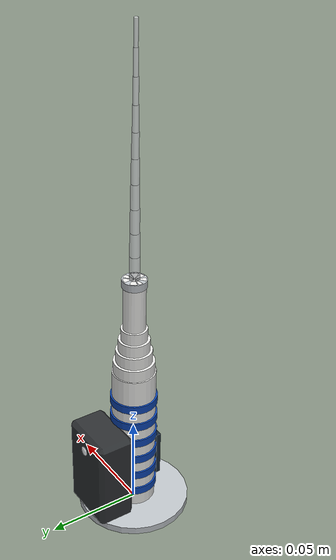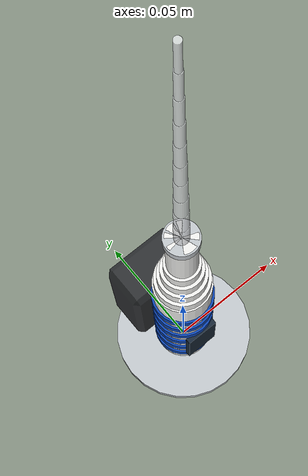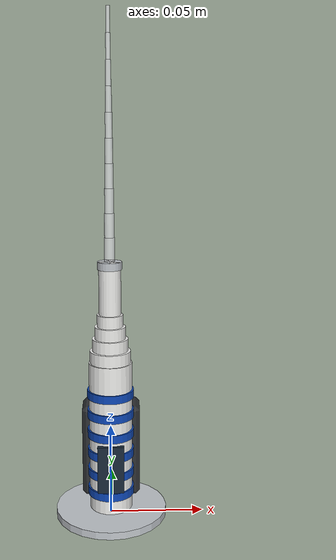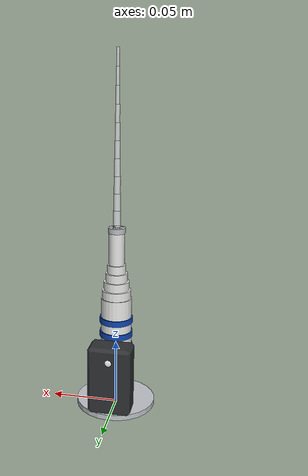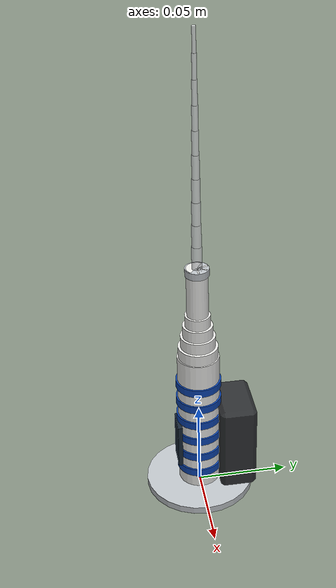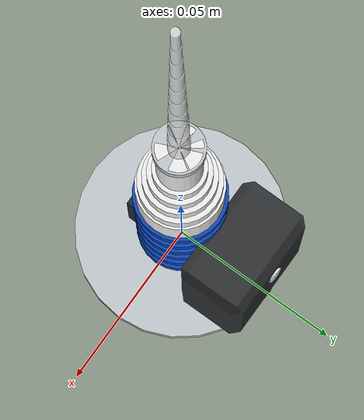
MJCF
<?xml version="1.0" encoding="utf-8"?>
<!-- Generated by scripts/generate_pipette.py; do not edit by hand. -->
<mujoco model="pipette">
<asset>
<material name="panel" rgba="0.93 0.93 0.91 1" specular="0.35" shininess="0.5"/>
<material name="panel_joint" rgba="0.74 0.75 0.75 1"/>
<material name="floor" rgba="0.80 0.81 0.81 1" specular="0.3" shininess="0.6" reflectance="0.12"/>
<material name="ceiling" rgba="0.95 0.95 0.94 1" specular="0.05" emission="0.45"/>
<material name="led" rgba="0.98 0.99 1.0 1" emission="1"/>
<material name="grille" rgba="0.55 0.57 0.58 1"/>
<material name="worktop" rgba="0.95 0.95 0.94 1" specular="0.8" shininess="0.9" reflectance="0.3"/>
<material name="white" rgba="0.94 0.94 0.93 1" specular="0.3" shininess="0.4"/>
<material name="white_matte" rgba="0.92 0.92 0.91 1" specular="0.1"/>
<material name="shelf" rgba="0.95 0.95 0.95 1" specular="0.4" shininess="0.5"/>
<material name="seam" rgba="0.80 0.81 0.81 1"/>
<material name="amber" rgba="0.55 0.24 0.04 0.82" specular="0.9" shininess="0.95"/>
<material name="sample_hdpe" rgba="0.92 0.92 0.91 1" specular="0.25" shininess="0.4"/>
<material name="sample_cap" rgba="0.93 0.93 0.91 1" specular="0.3" shininess="0.5"/>
<material name="glass" rgba="0.80 0.90 0.95 0.15" specular="0.9" shininess="0.95" reflectance="0.1"/>
<material name="glass_clear" rgba="0.88 0.94 0.97 0.30" specular="0.9" shininess="0.95"/>
<material name="frosted" rgba="0.96 0.97 0.98 0.75"/>
<material name="aluminium" rgba="0.76 0.78 0.80 1" specular="0.7" shininess="0.7"/>
<material name="steel" rgba="0.72 0.73 0.74 1" specular="0.8" shininess="0.6"/>
<material name="black" rgba="0.05 0.05 0.06 1" specular="0.9" shininess="0.9"/>
<material name="dark" rgba="0.18 0.19 0.20 1"/>
<material name="grey_device" rgba="0.80 0.81 0.80 1" specular="0.3"/>
<material name="screen" rgba="0.10 0.16 0.22 1" emission="0.25"/>
<material name="orange" rgba="0.93 0.40 0.10 1"/>
<material name="blue_hdpe" rgba="0.05 0.28 0.72 1" specular="0.15"/>
<material name="blue_motor" rgba="0.10 0.30 0.70 1" specular="0.5"/>
<material name="stripe_blue" rgba="0.10 0.35 0.75 1"/>
<material name="cream" rgba="0.93 0.91 0.84 1" specular="0.3"/>
<material name="hdpe_white" rgba="0.93 0.93 0.90 0.85" specular="0.2"/>
<material name="kraft" rgba="0.60 0.45 0.28 1" specular="0.05"/>
<material name="tape" rgba="0.65 0.48 0.28 1" specular="0.3" shininess="0.2"/>
<material name="cardboard" rgba="0.72 0.58 0.40 1" specular="0.05"/>
<material name="red_rack" rgba="0.75 0.10 0.08 1" specular="0.3"/>
<material name="navy_rack" rgba="0.10 0.14 0.32 1" specular="0.3"/>
<material name="galvanised" rgba="0.68 0.70 0.71 1" specular="0.5"/>
<material name="foil" rgba="0.80 0.80 0.82 1" specular="1" shininess="1"/>
<material name="paper" rgba="0.98 0.98 0.97 1"/>
<material name="bag" rgba="0.95 0.95 0.93 0.55"/>
<material name="red_cap" rgba="0.80 0.10 0.10 1"/>
<material name="coat" rgba="0.95 0.96 0.97 1"/>
<material name="skin" rgba="0.80 0.64 0.52 1"/>
<material name="cap_blue" rgba="0.55 0.72 0.90 1"/>
<material name="trousers" rgba="0.20 0.22 0.28 1"/>
<material name="desk" rgba="0.86 0.84 0.80 1"/>
<mesh name="bevel_0" vertex="-0.016 -0.0078 -0.0238 -0.016 -0.0078 0.0238 -0.016 0.0078 -0.0238 -0.016 0.0078 0.0238 0.016 -0.0078 -0.0238 0.016 -0.0078 0.0238 0.016 0.0078 -0.0238 0.016 0.0078 0.0238 -0.0138 -0.01 -0.0238 -0.0138 -0.01 0.0238 -0.0138 0.01 -0.0238 -0.0138 0.01 0.0238 0.0138 -0.01 -0.0238 0.0138 -0.01 0.0238 0.0138 0.01 -0.0238 0.0138 0.01 0.0238 -0.0138 -0.0078 -0.026 -0.0138 -0.0078 0.026 -0.0138 0.0078 -0.026 -0.0138 0.0078 0.026 0.0138 -0.0078 -0.026 0.0138 -0.0078 0.026 0.0138 0.0078 -0.026 0.0138 0.0078 0.026"/>
</asset>
<worldbody>
<body name="pipette">

      <!-- Mounting collar and the drive block a robot head carries -->
      <geom name="pip_collar_0" type="cylinder" pos="0 0 0.002" size="0.03 0.002" material="aluminium" group="1"/>
      <geom type="box" pos="0 0.02 0.03" size="0.016 0.01 0.026" group="3" rgba="0 0 0 0"/>
      <geom name="pip_drive_0" type="mesh" mesh="bevel_0" pos="0 0.02 0.03" material="dark" contype="0" conaffinity="0" group="1"/>
      <geom name="pip_led_0" type="ellipsoid" pos="0 0.0305 0.046" size="0.0025 0.0006 0.0025" material="led" contype="0" conaffinity="0" group="1"/>

      <!-- Barrel -->
      <geom name="pip_barrel_0" type="cylinder" pos="0 0 0.045" size="0.0115 0.041" material="white" group="1"/>
      <geom name="pip_grip_ring_0" type="cylinder" pos="0 0 0.014" size="0.0124 0.0022" material="blue_hdpe" contype="0" conaffinity="0" group="1"/>
      <geom name="pip_grip_ring_1" type="cylinder" pos="0 0 0.025" size="0.0124 0.0022" material="blue_hdpe" contype="0" conaffinity="0" group="1"/>
      <geom name="pip_grip_ring_2" type="cylinder" pos="0 0 0.036" size="0.0124 0.0022" material="blue_hdpe" contype="0" conaffinity="0" group="1"/>
      <geom name="pip_grip_ring_3" type="cylinder" pos="0 0 0.047" size="0.0124 0.0022" material="blue_hdpe" contype="0" conaffinity="0" group="1"/>
      <geom name="pip_grip_ring_4" type="cylinder" pos="0 0 0.058" size="0.0124 0.0022" material="blue_hdpe" contype="0" conaffinity="0" group="1"/>
      <geom name="pip_grip_ring_5" type="cylinder" pos="0 0 0.069" size="0.0124 0.0022" material="blue_hdpe" contype="0" conaffinity="0" group="1"/>

      <!-- Volume window, because a pipette without one looks wrong -->
      <geom name="pip_window_0" type="box" size="0.007 0.0012 0.013" pos="0 -0.0115 0.03" material="screen" contype="0" conaffinity="0" group="1"/>

      <!-- Shoulder and cone -->
      <geom name="pip_shoulder_0" type="cylinder" pos="0 0 0.0892" size="0.0108375 0.00325" material="white" group="1"/>
      <geom name="pip_shoulder_1" type="cylinder" pos="0 0 0.0958" size="0.0095125 0.00325" material="white" group="1"/>
      <geom name="pip_shoulder_2" type="cylinder" pos="0 0 0.1023" size="0.0081875 0.00325" material="white" group="1"/>
      <geom name="pip_shoulder_3" type="cylinder" pos="0 0 0.1087" size="0.0068625 0.00325" material="white" group="1"/>
      <geom name="pip_cone_0" type="cylinder" pos="0 0 0.126" size="0.0058 0.014" material="white" group="1"/>
      <geom name="pip_cone_lip_0" type="cylinder" pos="0 0 0.138" size="0.0064 0.002" material="aluminium" contype="0" conaffinity="0" group="1"/>
      <body name="pipette_tip">

      <!-- Fixed tip, tapering to the orifice -->
      <geom name="pip_tip_0" type="cylinder" pos="0 0 0.1463" size="0.002705 0.00625" material="frosted" group="1"/>
      <geom name="pip_tip_1" type="cylinder" pos="0 0 0.1588" size="0.002515 0.00625" material="frosted" group="1"/>
      <geom name="pip_tip_2" type="cylinder" pos="0 0 0.1713" size="0.002325 0.00625" material="frosted" group="1"/>
      <geom name="pip_tip_3" type="cylinder" pos="0 0 0.1838" size="0.002135 0.00625" material="frosted" group="1"/>
      <geom name="pip_tip_4" type="cylinder" pos="0 0 0.1963" size="0.001945 0.00625" material="frosted" group="1"/>
      <geom name="pip_tip_5" type="cylinder" pos="0 0 0.2088" size="0.001755 0.00625" material="frosted" group="1"/>
      <geom name="pip_tip_6" type="cylinder" pos="0 0 0.2213" size="0.001565 0.00625" material="frosted" group="1"/>
      <geom name="pip_tip_7" type="cylinder" pos="0 0 0.2338" size="0.001375 0.00625" material="frosted" group="1"/>
      <geom name="pip_tip_8" type="cylinder" pos="0 0 0.2463" size="0.001185 0.00625" material="frosted" group="1"/>
      <geom name="pip_tip_9" type="cylinder" pos="0 0 0.2588" size="0.000995 0.00625" material="frosted" group="1"/>

      <!-- What is held in the tip; the pipetting code resizes it -->
      <geom name="pip_liquid_0" type="cylinder" pos="0 0 0.144" size="0.00154 1e-05" material="amber" contype="0" conaffinity="0" group="1"/>
      <site name="tip" pos="0 0 0.265" size="0.0015" rgba="0.9 0.3 0.2 0.6" group="4"/>
      </body>
</body>
</worldbody>
</mujoco>
